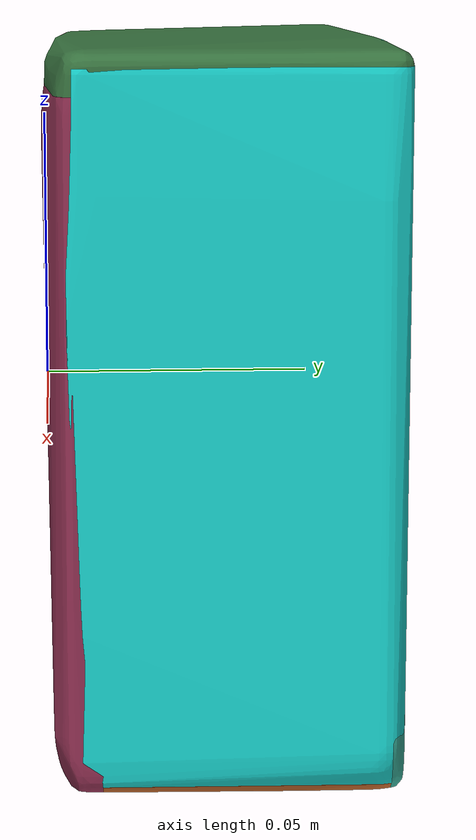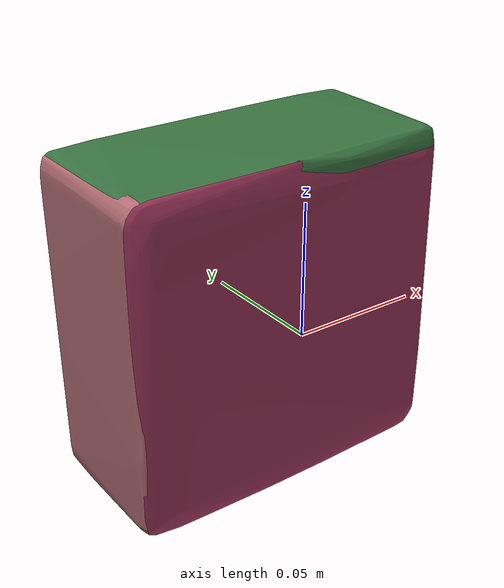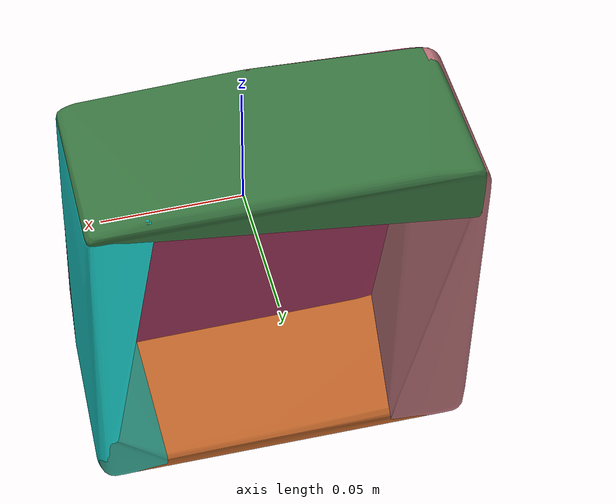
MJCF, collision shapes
<mujoco model="black_toothpaste_basket">
  <default>
    <default class="black_toothpaste_baskset_visual">
      <geom group="2" type="mesh" contype="0" conaffinity="0"/>
    </default>
    <default class="black_toothpaste_baskset_collision">
      <geom group="3" type="mesh"/>
    </default>
  </default>
  <asset>
    <texture type="2d" name="baked_mesh_2d7e25d5_tex0" file="baked_mesh_2d7e25d5_tex0.png"/>
    <material name="black_toothpaste_basket_Texture" texture="baked_mesh_2d7e25d5_tex0" specular="0.5" shininess="0.5"/>
    <mesh file="black_toothpaste_basket.obj"/>
    <mesh file="black_toothpaste_basket_collision_0.obj"/>
    <mesh file="black_toothpaste_basket_collision_1.obj"/>
    <mesh file="black_toothpaste_basket_collision_2.obj"/>
    <mesh file="black_toothpaste_basket_collision_3.obj"/>
    <mesh file="black_toothpaste_basket_collision_4.obj"/>
    <mesh file="black_toothpaste_basket_collision_5.obj"/>
  </asset>
  <worldbody>
    <body name="black_toothpaste_basket" mocap="true">
      <geom material="black_toothpaste_basket_Texture" mesh="black_toothpaste_basket" class="black_toothpaste_baskset_visual"/>
      <geom mesh="black_toothpaste_basket_collision_0" rgba="0.5864216873618601 0.19584253343088454 0.3346780275158906 1" class="black_toothpaste_baskset_collision"/>
      <geom mesh="black_toothpaste_basket_collision_1" rgba="0.7078229747343305 0.43323850630590666 0.4569777120683317 1" class="black_toothpaste_baskset_collision"/>
      <geom mesh="black_toothpaste_basket_collision_2" rgba="0.741327627637918 0.3873293325801064 0.15784755125077343 1" class="black_toothpaste_baskset_collision"/>
      <geom mesh="black_toothpaste_basket_collision_3" rgba="0.2194695128813865 0.4536912428000711 0.24890762171595637 1" class="black_toothpaste_baskset_collision"/>
      <geom mesh="black_toothpaste_basket_collision_4" rgba="0.21946317762586776 0.6814951318163507 0.5995777594007862 1" class="black_toothpaste_baskset_collision"/>
      <geom mesh="black_toothpaste_basket_collision_5" rgba="0.10552128663558247 0.8620823563766639 0.8412031045847705 1" class="black_toothpaste_baskset_collision"/>
    </body>
  </worldbody>
</mujoco>
